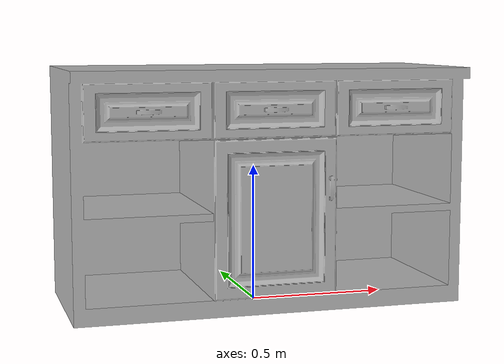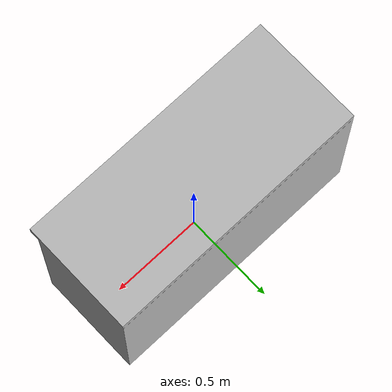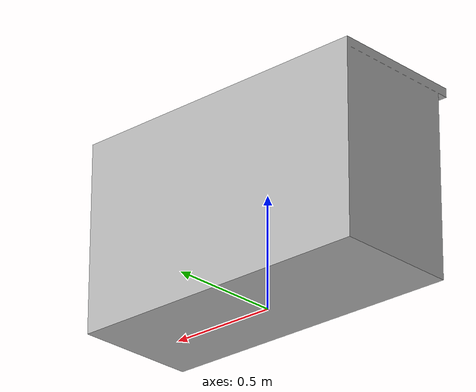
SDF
<?xml version='1.0'?>
<sdf version='1.6'>
  <model name='19_CounterWithStorage'>
    <link name='body'>
	  <inertial>
        <mass>40</mass>
        <pose frame=''>0 0 0 0 0 0</pose>
        <inertia>
          <ixx>3.35908</ixx>
          <ixy>0</ixy>
          <ixz>0</ixz>
          <iyy>8.22596</iyy>
          <iyz>0</iyz>
          <izz>6.57378</izz>
        </inertia>
      </inertial>
      <pose frame=''>0 0 0 0 -0 0</pose>
      <self_collide>0</self_collide>
      <kinematic>0</kinematic>
      <gravity>1</gravity>
      <visual name='visual'>
        <geometry>
          <mesh>
            <uri>model://CounterWithStorage_f5c803ebd10e_lod0/meshes/visual_LowPoly_19_CounterWithStorage.dae</uri>
          </mesh>
        </geometry>
		<meta> <layer> 1 </layer></meta>
      </visual>
      <collision name='collision_0'>
        <laser_retro>0</laser_retro>
        <max_contacts>10</max_contacts>
        <pose frame=''>0 0 0 0 -0 0</pose>
        <geometry>
          <mesh>
            <uri>model://CounterWithStorage_f5c803ebd10e_lod0/meshes/collision_19_CounterWithStorage.dae</uri>
            <scale>1 1 1</scale>
          </mesh>
        </geometry>
		<surface>
          <friction>
            <ode>
              <mu>0.6</mu>
              <mu2>0.6</mu2>
              <fdir1>0 0 0</fdir1>
              <slip1>0</slip1>
              <slip2>0</slip2>
            </ode>
            <torsional>
              <coefficient>1</coefficient>
              <patch_radius>0</patch_radius>
              <surface_radius>0</surface_radius>
              <use_patch_radius>1</use_patch_radius>
              <ode>
                <slip>0</slip>
              </ode>
            </torsional>
          </friction>
        </surface>
      </collision>
    </link>
    <static>true</static>
  </model>
</sdf>
